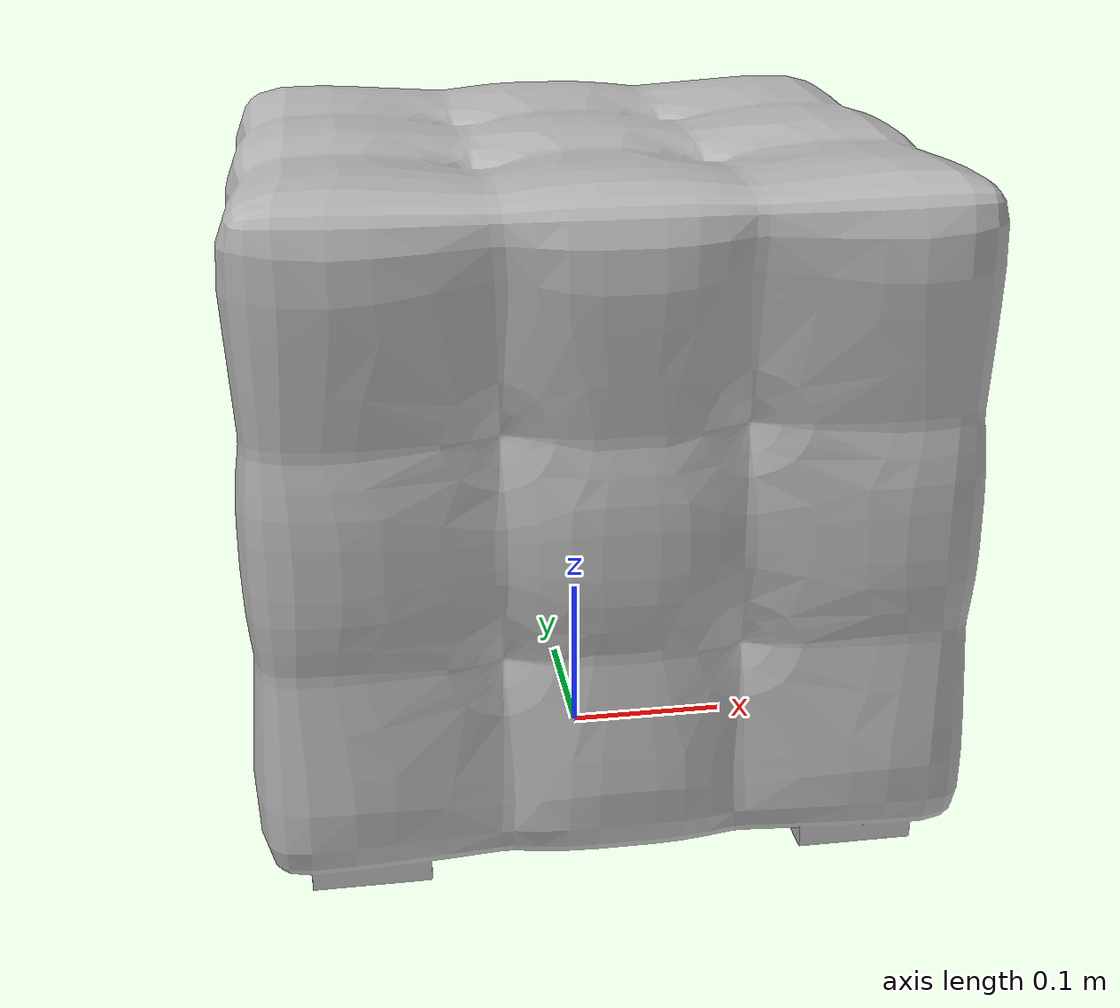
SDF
<?xml version='1.0'?>
<sdf version='1.4'>
  <model name='541'>
    <pose>0 0 0 0 0 0</pose>
    <static>true</static>
    <link name='link'>
      <collision name='collision'>
        <pose>0 0 0 0 0 0</pose>
        <geometry>
          <box>
            <size>0.42 0.4 2</size>
          </box>
        </geometry>
      </collision>
      <visual name='visual'>
        <pose>0 0 0 0 0 0</pose>
        <geometry>
          <mesh><uri>model://541/541.dae</uri></mesh>
        </geometry>
      </visual>
    </link>
  </model>
</sdf>
